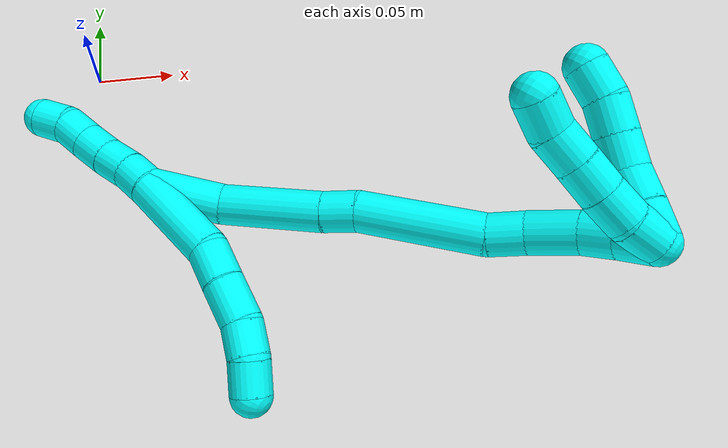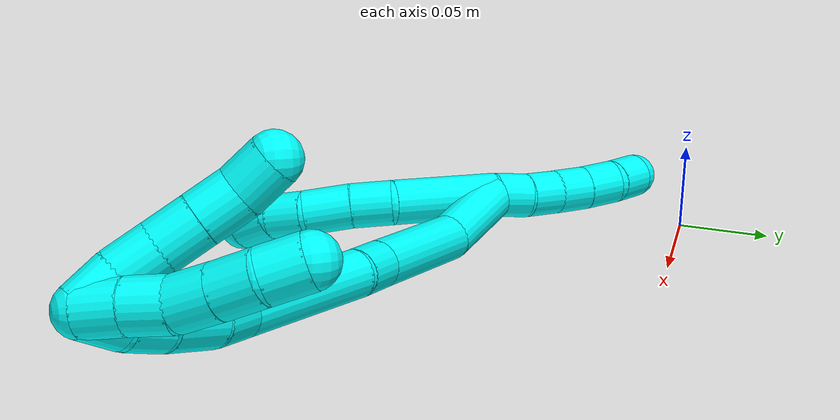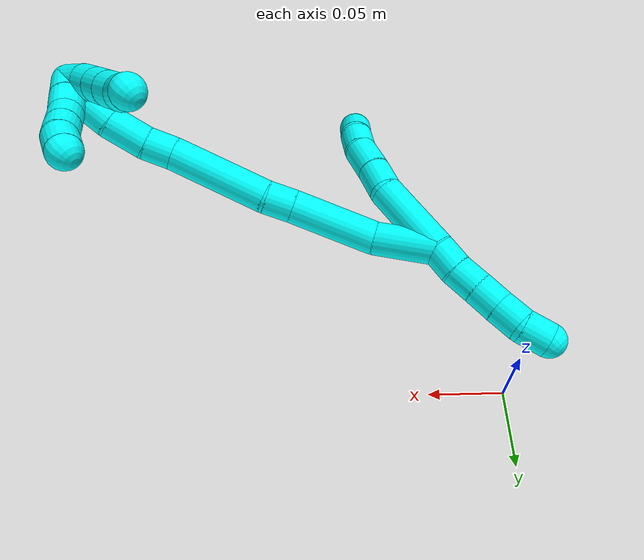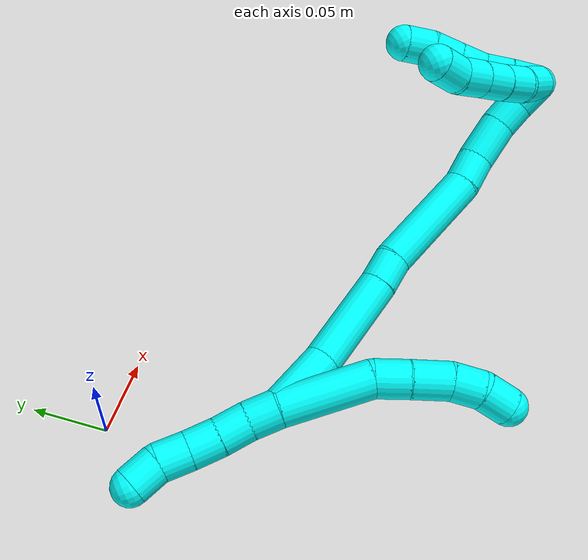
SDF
<sdf version="1.7">
 <world name="default">
  <model name="3">
   <static>0</static>
   <link name="3">
    <collision name="collision-cylinder-e_1_2_8">
     <pose>-0.003443 0.002339 0.029912 -0.078039 -0.114247 0.004465</pose>
     <geometry><cylinder><radius>0.0125</radius><length>0.0604</length></cylinder></geometry>
     <surface>
      <friction><ode><mu>1.16</mu><mu2>1.16</mu2><slip1>0</slip1><slip2>0</slip2></ode></friction>
      <contact><ode><kp>1e+06</kp><kd>1</kd><max_vel>0</max_vel><min_depth>0.001</min_depth></ode></contact>
     </surface>
    </collision>
    <visual name="visual-cylinder-e_1_2_8">
     <pose>-0.003443 0.002339 0.029912 -0.078039 -0.114247 0.004465</pose>
     <geometry><cylinder><radius>0.0125</radius><length>0.0604</length></cylinder></geometry>
     <material><ambient>0.003922 1 0.996078 1</ambient></material>
    </visual>
    <collision name="collision-cylinder-e_2_8_9">
     <pose>-0.011161 0.007368 0.070007 -0.258234 -0.385615 0.050687</pose>
     <geometry><cylinder><radius>0.0125</radius><length>0.022735</length></cylinder></geometry>
     <surface>
      <friction><ode><mu>1.16</mu><mu2>1.16</mu2><slip1>0</slip1><slip2>0</slip2></ode></friction>
      <contact><ode><kp>1e+06</kp><kd>1</kd><max_vel>0</max_vel><min_depth>0.001</min_depth></ode></contact>
     </surface>
    </collision>
    <visual name="visual-cylinder-e_2_8_9">
     <pose>-0.011161 0.007368 0.070007 -0.258234 -0.385615 0.050687</pose>
     <geometry><cylinder><radius>0.0125</radius><length>0.022735</length></cylinder></geometry>
     <material><ambient>0.003922 1 0.996078 1</ambient></material>
    </visual>
    <collision name="collision-cylinder-e_3_9_10">
     <pose>-0.02101 0.012439 0.091811 -0.202158 -0.439237 0.045272</pose>
     <geometry><cylinder><radius>0.0125</radius><length>0.026212</length></cylinder></geometry>
     <surface>
      <friction><ode><mu>1.16</mu><mu2>1.16</mu2><slip1>0</slip1><slip2>0</slip2></ode></friction>
      <contact><ode><kp>1e+06</kp><kd>1</kd><max_vel>0</max_vel><min_depth>0.001</min_depth></ode></contact>
     </surface>
    </collision>
    <visual name="visual-cylinder-e_3_9_10">
     <pose>-0.02101 0.012439 0.091811 -0.202158 -0.439237 0.045272</pose>
     <geometry><cylinder><radius>0.0125</radius><length>0.026212</length></cylinder></geometry>
     <material><ambient>0.003922 1 0.996078 1</ambient></material>
    </visual>
    <collision name="collision-cylinder-e_4_10_11">
     <pose>-0.032347 0.018132 0.111107 -0.407322 -0.603642 0.128419</pose>
     <geometry><cylinder><radius>0.0125</radius><length>0.020307</length></cylinder></geometry>
     <surface>
      <friction><ode><mu>1.16</mu><mu2>1.16</mu2><slip1>0</slip1><slip2>0</slip2></ode></friction>
      <contact><ode><kp>1e+06</kp><kd>1</kd><max_vel>0</max_vel><min_depth>0.001</min_depth></ode></contact>
     </surface>
    </collision>
    <visual name="visual-cylinder-e_4_10_11">
     <pose>-0.032347 0.018132 0.111107 -0.407322 -0.603642 0.128419</pose>
     <geometry><cylinder><radius>0.0125</radius><length>0.020307</length></cylinder></geometry>
     <material><ambient>0.003922 1 0.996078 1</ambient></material>
    </visual>
    <collision name="collision-cylinder-e_5_11_6">
     <pose>-0.046181 0.023942 0.12445 -0.415079 -0.916191 0.206915</pose>
     <geometry><cylinder><radius>0.0125</radius><length>0.020346</length></cylinder></geometry>
     <surface>
      <friction><ode><mu>1.16</mu><mu2>1.16</mu2><slip1>0</slip1><slip2>0</slip2></ode></friction>
      <contact><ode><kp>1e+06</kp><kd>1</kd><max_vel>0</max_vel><min_depth>0.001</min_depth></ode></contact>
     </surface>
    </collision>
    <visual name="visual-cylinder-e_5_11_6">
     <pose>-0.046181 0.023942 0.12445 -0.415079 -0.916191 0.206915</pose>
     <geometry><cylinder><radius>0.0125</radius><length>0.020346</length></cylinder></geometry>
     <material><ambient>0.003922 1 0.996078 1</ambient></material>
    </visual>
    <collision name="collision-cylinder-e_1_2_12">
     <pose>-8e-06 -0.001006 -0.009949 3.04078 -0.00081 -0.016058</pose>
     <geometry><cylinder><radius>0.0125</radius><length>0.02</length></cylinder></geometry>
     <surface>
      <friction><ode><mu>1.16</mu><mu2>1.16</mu2><slip1>0</slip1><slip2>0</slip2></ode></friction>
      <contact><ode><kp>1e+06</kp><kd>1</kd><max_vel>0</max_vel><min_depth>0.001</min_depth></ode></contact>
     </surface>
    </collision>
    <visual name="visual-cylinder-e_1_2_12">
     <pose>-8e-06 -0.001006 -0.009949 3.04078 -0.00081 -0.016058</pose>
     <geometry><cylinder><radius>0.0125</radius><length>0.02</length></cylinder></geometry>
     <material><ambient>0.003922 1 0.996078 1</ambient></material>
    </visual>
    <collision name="collision-cylinder-e_2_12_13">
     <pose>-0.000349 -0.001483 -0.029879 -3.08854 -0.033325 1.12153</pose>
     <geometry><cylinder><radius>0.0125</radius><length>0.02</length></cylinder></geometry>
     <surface>
      <friction><ode><mu>1.16</mu><mu2>1.16</mu2><slip1>0</slip1><slip2>0</slip2></ode></friction>
      <contact><ode><kp>1e+06</kp><kd>1</kd><max_vel>0</max_vel><min_depth>0.001</min_depth></ode></contact>
     </surface>
    </collision>
    <visual name="visual-cylinder-e_2_12_13">
     <pose>-0.000349 -0.001483 -0.029879 -3.08854 -0.033325 1.12153</pose>
     <geometry><cylinder><radius>0.0125</radius><length>0.02</length></cylinder></geometry>
     <material><ambient>0.003922 1 0.996078 1</ambient></material>
    </visual>
    <collision name="collision-cylinder-e_3_13_14">
     <pose>-0.000222 -0.0006 -0.049842 -3.10622 0.046048 -1.83159</pose>
     <geometry><cylinder><radius>0.0125</radius><length>0.02</length></cylinder></geometry>
     <surface>
      <friction><ode><mu>1.16</mu><mu2>1.16</mu2><slip1>0</slip1><slip2>0</slip2></ode></friction>
      <contact><ode><kp>1e+06</kp><kd>1</kd><max_vel>0</max_vel><min_depth>0.001</min_depth></ode></contact>
     </surface>
    </collision>
    <visual name="visual-cylinder-e_3_13_14">
     <pose>-0.000222 -0.0006 -0.049842 -3.10622 0.046048 -1.83159</pose>
     <geometry><cylinder><radius>0.0125</radius><length>0.02</length></cylinder></geometry>
     <material><ambient>0.003922 1 0.996078 1</ambient></material>
    </visual>
    <collision name="collision-cylinder-e_4_14_15">
     <pose>0.001387 0.000412 -0.069737 -3.07527 0.115171 -2.09727</pose>
     <geometry><cylinder><radius>0.0125</radius><length>0.02</length></cylinder></geometry>
     <surface>
      <friction><ode><mu>1.16</mu><mu2>1.16</mu2><slip1>0</slip1><slip2>0</slip2></ode></friction>
      <contact><ode><kp>1e+06</kp><kd>1</kd><max_vel>0</max_vel><min_depth>0.001</min_depth></ode></contact>
     </surface>
    </collision>
    <visual name="visual-cylinder-e_4_14_15">
     <pose>0.001387 0.000412 -0.069737 -3.07527 0.115171 -2.09727</pose>
     <geometry><cylinder><radius>0.0125</radius><length>0.02</length></cylinder></geometry>
     <material><ambient>0.003922 1 0.996078 1</ambient></material>
    </visual>
    <collision name="collision-cylinder-e_5_15_5">
     <pose>0.000921 0.003705 -0.08916 -2.87134 -0.162275 1.07806</pose>
     <geometry><cylinder><radius>0.0125</radius><length>0.02</length></cylinder></geometry>
     <surface>
      <friction><ode><mu>1.16</mu><mu2>1.16</mu2><slip1>0</slip1><slip2>0</slip2></ode></friction>
      <contact><ode><kp>1e+06</kp><kd>1</kd><max_vel>0</max_vel><min_depth>0.001</min_depth></ode></contact>
     </surface>
    </collision>
    <visual name="visual-cylinder-e_5_15_5">
     <pose>0.000921 0.003705 -0.08916 -2.87134 -0.162275 1.07806</pose>
     <geometry><cylinder><radius>0.0125</radius><length>0.02</length></cylinder></geometry>
     <material><ambient>0.003922 1 0.996078 1</ambient></material>
    </visual>
    <collision name="collision-cylinder-e_1_2_16">
     <pose>0.001066 -0.01314 0.019235 0.599307 0.045743 0.014135</pose>
     <geometry><cylinder><radius>0.0125</radius><length>0.046639</length></cylinder></geometry>
     <surface>
      <friction><ode><mu>1.16</mu><mu2>1.16</mu2><slip1>0</slip1><slip2>0</slip2></ode></friction>
      <contact><ode><kp>1e+06</kp><kd>1</kd><max_vel>0</max_vel><min_depth>0.001</min_depth></ode></contact>
     </surface>
    </collision>
    <visual name="visual-cylinder-e_1_2_16">
     <pose>0.001066 -0.01314 0.019235 0.599307 0.045743 0.014135</pose>
     <geometry><cylinder><radius>0.0125</radius><length>0.046639</length></cylinder></geometry>
     <material><ambient>0.003922 1 0.996078 1</ambient></material>
    </visual>
    <collision name="collision-cylinder-e_2_16_17">
     <pose>0.012408 -0.038357 0.066639 0.405033 0.323502 0.066986</pose>
     <geometry><cylinder><radius>0.0125</radius><length>0.064649</length></cylinder></geometry>
     <surface>
      <friction><ode><mu>1.16</mu><mu2>1.16</mu2><slip1>0</slip1><slip2>0</slip2></ode></friction>
      <contact><ode><kp>1e+06</kp><kd>1</kd><max_vel>0</max_vel><min_depth>0.001</min_depth></ode></contact>
     </surface>
    </collision>
    <visual name="visual-cylinder-e_2_16_17">
     <pose>0.012408 -0.038357 0.066639 0.405033 0.323502 0.066986</pose>
     <geometry><cylinder><radius>0.0125</radius><length>0.064649</length></cylinder></geometry>
     <material><ambient>0.003922 1 0.996078 1</ambient></material>
    </visual>
    <collision name="collision-cylinder-e_3_17_18">
     <pose>0.026848 -0.054707 0.103495 0.457126 0.406206 0.095743</pose>
     <geometry><cylinder><radius>0.0125</radius><length>0.021079</length></cylinder></geometry>
     <surface>
      <friction><ode><mu>1.16</mu><mu2>1.16</mu2><slip1>0</slip1><slip2>0</slip2></ode></friction>
      <contact><ode><kp>1e+06</kp><kd>1</kd><max_vel>0</max_vel><min_depth>0.001</min_depth></ode></contact>
     </surface>
    </collision>
    <visual name="visual-cylinder-e_3_17_18">
     <pose>0.026848 -0.054707 0.103495 0.457126 0.406206 0.095743</pose>
     <geometry><cylinder><radius>0.0125</radius><length>0.021079</length></cylinder></geometry>
     <material><ambient>0.003922 1 0.996078 1</ambient></material>
    </visual>
    <collision name="collision-cylinder-e_4_18_19">
     <pose>0.040148 -0.07093 0.146974 0.330856 0.243403 0.040833</pose>
     <geometry><cylinder><radius>0.0125</radius><length>0.075807</length></cylinder></geometry>
     <surface>
      <friction><ode><mu>1.16</mu><mu2>1.16</mu2><slip1>0</slip1><slip2>0</slip2></ode></friction>
      <contact><ode><kp>1e+06</kp><kd>1</kd><max_vel>0</max_vel><min_depth>0.001</min_depth></ode></contact>
     </surface>
    </collision>
    <visual name="visual-cylinder-e_4_18_19">
     <pose>0.040148 -0.07093 0.146974 0.330856 0.243403 0.040833</pose>
     <geometry><cylinder><radius>0.0125</radius><length>0.075807</length></cylinder></geometry>
     <material><ambient>0.003922 1 0.996078 1</ambient></material>
    </visual>
    <collision name="collision-cylinder-e_5_19_20">
     <pose>0.054132 -0.086993 0.190648 0.433563 0.459928 0.103028</pose>
     <geometry><cylinder><radius>0.0125</radius><length>0.021847</length></cylinder></geometry>
     <surface>
      <friction><ode><mu>1.16</mu><mu2>1.16</mu2><slip1>0</slip1><slip2>0</slip2></ode></friction>
      <contact><ode><kp>1e+06</kp><kd>1</kd><max_vel>0</max_vel><min_depth>0.001</min_depth></ode></contact>
     </surface>
    </collision>
    <visual name="visual-cylinder-e_5_19_20">
     <pose>0.054132 -0.086993 0.190648 0.433563 0.459928 0.103028</pose>
     <geometry><cylinder><radius>0.0125</radius><length>0.021847</length></cylinder></geometry>
     <material><ambient>0.003922 1 0.996078 1</ambient></material>
    </visual>
    <collision name="collision-cylinder-e_6_20_21">
     <pose>0.066042 -0.0942 0.2123 0.23778 0.493157 0.060115</pose>
     <geometry><cylinder><radius>0.0125</radius><length>0.029832</length></cylinder></geometry>
     <surface>
      <friction><ode><mu>1.16</mu><mu2>1.16</mu2><slip1>0</slip1><slip2>0</slip2></ode></friction>
      <contact><ode><kp>1e+06</kp><kd>1</kd><max_vel>0</max_vel><min_depth>0.001</min_depth></ode></contact>
     </surface>
    </collision>
    <visual name="visual-cylinder-e_6_20_21">
     <pose>0.066042 -0.0942 0.2123 0.23778 0.493157 0.060115</pose>
     <geometry><cylinder><radius>0.0125</radius><length>0.029832</length></cylinder></geometry>
     <material><ambient>0.003922 1 0.996078 1</ambient></material>
    </visual>
    <collision name="collision-cylinder-e_7_21_22">
     <pose>0.077261 -0.097917 0.234169 0.068338 0.42768 0.014846</pose>
     <geometry><cylinder><radius>0.0125</radius><length>0.020049</length></cylinder></geometry>
     <surface>
      <friction><ode><mu>1.16</mu><mu2>1.16</mu2><slip1>0</slip1><slip2>0</slip2></ode></friction>
      <contact><ode><kp>1e+06</kp><kd>1</kd><max_vel>0</max_vel><min_depth>0.001</min_depth></ode></contact>
     </surface>
    </collision>
    <visual name="visual-cylinder-e_7_21_22">
     <pose>0.077261 -0.097917 0.234169 0.068338 0.42768 0.014846</pose>
     <geometry><cylinder><radius>0.0125</radius><length>0.020049</length></cylinder></geometry>
     <material><ambient>0.003922 1 0.996078 1</ambient></material>
    </visual>
    <collision name="collision-cylinder-e_8_22_1">
     <pose>0.08591 -0.097005 0.252127 -0.171584 0.463278 -0.040566</pose>
     <geometry><cylinder><radius>0.0125</radius><length>0.020097</length></cylinder></geometry>
     <surface>
      <friction><ode><mu>1.16</mu><mu2>1.16</mu2><slip1>0</slip1><slip2>0</slip2></ode></friction>
      <contact><ode><kp>1e+06</kp><kd>1</kd><max_vel>0</max_vel><min_depth>0.001</min_depth></ode></contact>
     </surface>
    </collision>
    <visual name="visual-cylinder-e_8_22_1">
     <pose>0.08591 -0.097005 0.252127 -0.171584 0.463278 -0.040566</pose>
     <geometry><cylinder><radius>0.0125</radius><length>0.020097</length></cylinder></geometry>
     <material><ambient>0.003922 1 0.996078 1</ambient></material>
    </visual>
    <collision name="collision-cylinder-e_1_1_23">
     <pose>0.093951 -0.090409 0.253125 -2.56943 0.363013 -1.11564</pose>
     <geometry><cylinder><radius>0.0125</radius><length>0.02</length></cylinder></geometry>
     <surface>
      <friction><ode><mu>1.16</mu><mu2>1.16</mu2><slip1>0</slip1><slip2>0</slip2></ode></friction>
      <contact><ode><kp>1e+06</kp><kd>1</kd><max_vel>0</max_vel><min_depth>0.001</min_depth></ode></contact>
     </surface>
    </collision>
    <visual name="visual-cylinder-e_1_1_23">
     <pose>0.093951 -0.090409 0.253125 -2.56943 0.363013 -1.11564</pose>
     <geometry><cylinder><radius>0.0125</radius><length>0.02</length></cylinder></geometry>
     <material><ambient>0.003922 1 0.996078 1</ambient></material>
    </visual>
    <collision name="collision-cylinder-e_2_23_24">
     <pose>0.102198 -0.082348 0.236961 -2.79502 0.488867 -1.91773</pose>
     <geometry><cylinder><radius>0.0125</radius><length>0.02</length></cylinder></geometry>
     <surface>
      <friction><ode><mu>1.16</mu><mu2>1.16</mu2><slip1>0</slip1><slip2>0</slip2></ode></friction>
      <contact><ode><kp>1e+06</kp><kd>1</kd><max_vel>0</max_vel><min_depth>0.001</min_depth></ode></contact>
     </surface>
    </collision>
    <visual name="visual-cylinder-e_2_23_24">
     <pose>0.102198 -0.082348 0.236961 -2.79502 0.488867 -1.91773</pose>
     <geometry><cylinder><radius>0.0125</radius><length>0.02</length></cylinder></geometry>
     <material><ambient>0.003922 1 0.996078 1</ambient></material>
    </visual>
    <collision name="collision-cylinder-e_3_24_25">
     <pose>0.112031 -0.076631 0.22052 -2.81917 0.539486 -2.07821</pose>
     <geometry><cylinder><radius>0.0125</radius><length>0.02</length></cylinder></geometry>
     <surface>
      <friction><ode><mu>1.16</mu><mu2>1.16</mu2><slip1>0</slip1><slip2>0</slip2></ode></friction>
      <contact><ode><kp>1e+06</kp><kd>1</kd><max_vel>0</max_vel><min_depth>0.001</min_depth></ode></contact>
     </surface>
    </collision>
    <visual name="visual-cylinder-e_3_24_25">
     <pose>0.112031 -0.076631 0.22052 -2.81917 0.539486 -2.07821</pose>
     <geometry><cylinder><radius>0.0125</radius><length>0.02</length></cylinder></geometry>
     <material><ambient>0.003922 1 0.996078 1</ambient></material>
    </visual>
    <collision name="collision-cylinder-e_4_25_26">
     <pose>0.122176 -0.071099 0.204197 -2.81056 0.524487 -2.02827</pose>
     <geometry><cylinder><radius>0.0125</radius><length>0.02</length></cylinder></geometry>
     <surface>
      <friction><ode><mu>1.16</mu><mu2>1.16</mu2><slip1>0</slip1><slip2>0</slip2></ode></friction>
      <contact><ode><kp>1e+06</kp><kd>1</kd><max_vel>0</max_vel><min_depth>0.001</min_depth></ode></contact>
     </surface>
    </collision>
    <visual name="visual-cylinder-e_4_25_26">
     <pose>0.122176 -0.071099 0.204197 -2.81056 0.524487 -2.02827</pose>
     <geometry><cylinder><radius>0.0125</radius><length>0.02</length></cylinder></geometry>
     <material><ambient>0.003922 1 0.996078 1</ambient></material>
    </visual>
    <collision name="collision-cylinder-e_5_26_4">
     <pose>0.134397 -0.065624 0.189617 -2.74712 0.805714 -2.26466</pose>
     <geometry><cylinder><radius>0.0125</radius><length>0.02</length></cylinder></geometry>
     <surface>
      <friction><ode><mu>1.16</mu><mu2>1.16</mu2><slip1>0</slip1><slip2>0</slip2></ode></friction>
      <contact><ode><kp>1e+06</kp><kd>1</kd><max_vel>0</max_vel><min_depth>0.001</min_depth></ode></contact>
     </surface>
    </collision>
    <visual name="visual-cylinder-e_5_26_4">
     <pose>0.134397 -0.065624 0.189617 -2.74712 0.805714 -2.26466</pose>
     <geometry><cylinder><radius>0.0125</radius><length>0.02</length></cylinder></geometry>
     <material><ambient>0.003922 1 0.996078 1</ambient></material>
    </visual>
    <collision name="collision-cylinder-e_1_1_27">
     <pose>0.095722 -0.098662 0.253142 2.75507 0.561154 1.94847</pose>
     <geometry><cylinder><radius>0.0125</radius><length>0.02</length></cylinder></geometry>
     <surface>
      <friction><ode><mu>1.16</mu><mu2>1.16</mu2><slip1>0</slip1><slip2>0</slip2></ode></friction>
      <contact><ode><kp>1e+06</kp><kd>1</kd><max_vel>0</max_vel><min_depth>0.001</min_depth></ode></contact>
     </surface>
    </collision>
    <visual name="visual-cylinder-e_1_1_27">
     <pose>0.095722 -0.098662 0.253142 2.75507 0.561154 1.94847</pose>
     <geometry><cylinder><radius>0.0125</radius><length>0.02</length></cylinder></geometry>
     <material><ambient>0.003922 1 0.996078 1</ambient></material>
    </visual>
    <collision name="collision-cylinder-e_2_27_28">
     <pose>0.105984 -0.105335 0.237334 2.72957 0.516753 1.80347</pose>
     <geometry><cylinder><radius>0.0125</radius><length>0.02</length></cylinder></geometry>
     <surface>
      <friction><ode><mu>1.16</mu><mu2>1.16</mu2><slip1>0</slip1><slip2>0</slip2></ode></friction>
      <contact><ode><kp>1e+06</kp><kd>1</kd><max_vel>0</max_vel><min_depth>0.001</min_depth></ode></contact>
     </surface>
    </collision>
    <visual name="visual-cylinder-e_2_27_28">
     <pose>0.105984 -0.105335 0.237334 2.72957 0.516753 1.80347</pose>
     <geometry><cylinder><radius>0.0125</radius><length>0.02</length></cylinder></geometry>
     <material><ambient>0.003922 1 0.996078 1</ambient></material>
    </visual>
    <collision name="collision-cylinder-e_3_28_29">
     <pose>0.117706 -0.11067 0.222255 2.88667 0.74525 2.50795</pose>
     <geometry><cylinder><radius>0.0125</radius><length>0.02</length></cylinder></geometry>
     <surface>
      <friction><ode><mu>1.16</mu><mu2>1.16</mu2><slip1>0</slip1><slip2>0</slip2></ode></friction>
      <contact><ode><kp>1e+06</kp><kd>1</kd><max_vel>0</max_vel><min_depth>0.001</min_depth></ode></contact>
     </surface>
    </collision>
    <visual name="visual-cylinder-e_3_28_29">
     <pose>0.117706 -0.11067 0.222255 2.88667 0.74525 2.50795</pose>
     <geometry><cylinder><radius>0.0125</radius><length>0.02</length></cylinder></geometry>
     <material><ambient>0.003922 1 0.996078 1</ambient></material>
    </visual>
    <collision name="collision-cylinder-e_4_29_30">
     <pose>0.131371 -0.114103 0.208064 2.92205 0.759213 2.60252</pose>
     <geometry><cylinder><radius>0.0125</radius><length>0.02</length></cylinder></geometry>
     <surface>
      <friction><ode><mu>1.16</mu><mu2>1.16</mu2><slip1>0</slip1><slip2>0</slip2></ode></friction>
      <contact><ode><kp>1e+06</kp><kd>1</kd><max_vel>0</max_vel><min_depth>0.001</min_depth></ode></contact>
     </surface>
    </collision>
    <visual name="visual-cylinder-e_4_29_30">
     <pose>0.131371 -0.114103 0.208064 2.92205 0.759213 2.60252</pose>
     <geometry><cylinder><radius>0.0125</radius><length>0.02</length></cylinder></geometry>
     <material><ambient>0.003922 1 0.996078 1</ambient></material>
    </visual>
    <collision name="collision-cylinder-e_5_30_3">
     <pose>0.143586 -0.116285 0.192545 3.07041 0.562269 2.89623</pose>
     <geometry><cylinder><radius>0.0125</radius><length>0.02</length></cylinder></geometry>
     <surface>
      <friction><ode><mu>1.16</mu><mu2>1.16</mu2><slip1>0</slip1><slip2>0</slip2></ode></friction>
      <contact><ode><kp>1e+06</kp><kd>1</kd><max_vel>0</max_vel><min_depth>0.001</min_depth></ode></contact>
     </surface>
    </collision>
    <visual name="visual-cylinder-e_5_30_3">
     <pose>0.143586 -0.116285 0.192545 3.07041 0.562269 2.89623</pose>
     <geometry><cylinder><radius>0.0125</radius><length>0.02</length></cylinder></geometry>
     <material><ambient>0.003922 1 0.996078 1</ambient></material>
    </visual>
    <collision name="collision-sphere-3">
     <pose>0.148917 -0.116887 0.184106 0 -0 0</pose>
     <geometry><sphere><radius>0.0125</radius></sphere></geometry>
     <surface>
      <friction><ode><mu>1.16</mu><mu2>1.16</mu2><slip1>0</slip1><slip2>0</slip2></ode></friction>
      <contact><ode><kp>1e+06</kp><kd>1</kd><max_vel>0</max_vel><min_depth>0.001</min_depth></ode></contact>
     </surface>
    </collision>
    <visual name="visual-sphere-3">
     <pose>0.148917 -0.116887 0.184106 0 -0 0</pose>
     <geometry><sphere><radius>0.0125</radius></sphere></geometry>
     <material><ambient>0.003922 1 0.996078 1</ambient></material>
    </visual>
    <collision name="collision-sphere-30">
     <pose>0.138255 -0.115683 0.200984 0 -0 0</pose>
     <geometry><sphere><radius>0.0125</radius></sphere></geometry>
     <surface>
      <friction><ode><mu>1.16</mu><mu2>1.16</mu2><slip1>0</slip1><slip2>0</slip2></ode></friction>
      <contact><ode><kp>1e+06</kp><kd>1</kd><max_vel>0</max_vel><min_depth>0.001</min_depth></ode></contact>
     </surface>
    </collision>
    <visual name="visual-sphere-30">
     <pose>0.138255 -0.115683 0.200984 0 -0 0</pose>
     <geometry><sphere><radius>0.0125</radius></sphere></geometry>
     <material><ambient>0.003922 1 0.996078 1</ambient></material>
    </visual>
    <collision name="collision-sphere-29">
     <pose>0.124488 -0.112524 0.215144 0 -0 0</pose>
     <geometry><sphere><radius>0.0125</radius></sphere></geometry>
     <surface>
      <friction><ode><mu>1.16</mu><mu2>1.16</mu2><slip1>0</slip1><slip2>0</slip2></ode></friction>
      <contact><ode><kp>1e+06</kp><kd>1</kd><max_vel>0</max_vel><min_depth>0.001</min_depth></ode></contact>
     </surface>
    </collision>
    <visual name="visual-sphere-29">
     <pose>0.124488 -0.112524 0.215144 0 -0 0</pose>
     <geometry><sphere><radius>0.0125</radius></sphere></geometry>
     <material><ambient>0.003922 1 0.996078 1</ambient></material>
    </visual>
    <collision name="collision-sphere-28">
     <pose>0.110925 -0.108817 0.229367 0 -0 0</pose>
     <geometry><sphere><radius>0.0125</radius></sphere></geometry>
     <surface>
      <friction><ode><mu>1.16</mu><mu2>1.16</mu2><slip1>0</slip1><slip2>0</slip2></ode></friction>
      <contact><ode><kp>1e+06</kp><kd>1</kd><max_vel>0</max_vel><min_depth>0.001</min_depth></ode></contact>
     </surface>
    </collision>
    <visual name="visual-sphere-28">
     <pose>0.110925 -0.108817 0.229367 0 -0 0</pose>
     <geometry><sphere><radius>0.0125</radius></sphere></geometry>
     <material><ambient>0.003922 1 0.996078 1</ambient></material>
    </visual>
    <collision name="collision-sphere-27">
     <pose>0.101043 -0.101854 0.2453 0 -0 0</pose>
     <geometry><sphere><radius>0.0125</radius></sphere></geometry>
     <surface>
      <friction><ode><mu>1.16</mu><mu2>1.16</mu2><slip1>0</slip1><slip2>0</slip2></ode></friction>
      <contact><ode><kp>1e+06</kp><kd>1</kd><max_vel>0</max_vel><min_depth>0.001</min_depth></ode></contact>
     </surface>
    </collision>
    <visual name="visual-sphere-27">
     <pose>0.101043 -0.101854 0.2453 0 -0 0</pose>
     <geometry><sphere><radius>0.0125</radius></sphere></geometry>
     <material><ambient>0.003922 1 0.996078 1</ambient></material>
    </visual>
    <collision name="collision-sphere-4">
     <pose>0.14161 -0.062962 0.183223 0 -0 0</pose>
     <geometry><sphere><radius>0.0125</radius></sphere></geometry>
     <surface>
      <friction><ode><mu>1.16</mu><mu2>1.16</mu2><slip1>0</slip1><slip2>0</slip2></ode></friction>
      <contact><ode><kp>1e+06</kp><kd>1</kd><max_vel>0</max_vel><min_depth>0.001</min_depth></ode></contact>
     </surface>
    </collision>
    <visual name="visual-sphere-4">
     <pose>0.14161 -0.062962 0.183223 0 -0 0</pose>
     <geometry><sphere><radius>0.0125</radius></sphere></geometry>
     <material><ambient>0.003922 1 0.996078 1</ambient></material>
    </visual>
    <collision name="collision-sphere-26">
     <pose>0.127184 -0.068286 0.196011 0 -0 0</pose>
     <geometry><sphere><radius>0.0125</radius></sphere></geometry>
     <surface>
      <friction><ode><mu>1.16</mu><mu2>1.16</mu2><slip1>0</slip1><slip2>0</slip2></ode></friction>
      <contact><ode><kp>1e+06</kp><kd>1</kd><max_vel>0</max_vel><min_depth>0.001</min_depth></ode></contact>
     </surface>
    </collision>
    <visual name="visual-sphere-26">
     <pose>0.127184 -0.068286 0.196011 0 -0 0</pose>
     <geometry><sphere><radius>0.0125</radius></sphere></geometry>
     <material><ambient>0.003922 1 0.996078 1</ambient></material>
    </visual>
    <collision name="collision-sphere-25">
     <pose>0.117168 -0.073912 0.212383 0 -0 0</pose>
     <geometry><sphere><radius>0.0125</radius></sphere></geometry>
     <surface>
      <friction><ode><mu>1.16</mu><mu2>1.16</mu2><slip1>0</slip1><slip2>0</slip2></ode></friction>
      <contact><ode><kp>1e+06</kp><kd>1</kd><max_vel>0</max_vel><min_depth>0.001</min_depth></ode></contact>
     </surface>
    </collision>
    <visual name="visual-sphere-25">
     <pose>0.117168 -0.073912 0.212383 0 -0 0</pose>
     <geometry><sphere><radius>0.0125</radius></sphere></geometry>
     <material><ambient>0.003922 1 0.996078 1</ambient></material>
    </visual>
    <collision name="collision-sphere-24">
     <pose>0.106894 -0.079349 0.228658 0 -0 0</pose>
     <geometry><sphere><radius>0.0125</radius></sphere></geometry>
     <surface>
      <friction><ode><mu>1.16</mu><mu2>1.16</mu2><slip1>0</slip1><slip2>0</slip2></ode></friction>
      <contact><ode><kp>1e+06</kp><kd>1</kd><max_vel>0</max_vel><min_depth>0.001</min_depth></ode></contact>
     </surface>
    </collision>
    <visual name="visual-sphere-24">
     <pose>0.106894 -0.079349 0.228658 0 -0 0</pose>
     <geometry><sphere><radius>0.0125</radius></sphere></geometry>
     <material><ambient>0.003922 1 0.996078 1</ambient></material>
    </visual>
    <collision name="collision-sphere-23">
     <pose>0.097502 -0.085347 0.245265 0 -0 0</pose>
     <geometry><sphere><radius>0.0125</radius></sphere></geometry>
     <surface>
      <friction><ode><mu>1.16</mu><mu2>1.16</mu2><slip1>0</slip1><slip2>0</slip2></ode></friction>
      <contact><ode><kp>1e+06</kp><kd>1</kd><max_vel>0</max_vel><min_depth>0.001</min_depth></ode></contact>
     </surface>
    </collision>
    <visual name="visual-sphere-23">
     <pose>0.097502 -0.085347 0.245265 0 -0 0</pose>
     <geometry><sphere><radius>0.0125</radius></sphere></geometry>
     <material><ambient>0.003922 1 0.996078 1</ambient></material>
    </visual>
    <collision name="collision-sphere-1">
     <pose>0.0904 -0.09547 0.260984 0 -0 0</pose>
     <geometry><sphere><radius>0.0125</radius></sphere></geometry>
     <surface>
      <friction><ode><mu>1.16</mu><mu2>1.16</mu2><slip1>0</slip1><slip2>0</slip2></ode></friction>
      <contact><ode><kp>1e+06</kp><kd>1</kd><max_vel>0</max_vel><min_depth>0.001</min_depth></ode></contact>
     </surface>
    </collision>
    <visual name="visual-sphere-1">
     <pose>0.0904 -0.09547 0.260984 0 -0 0</pose>
     <geometry><sphere><radius>0.0125</radius></sphere></geometry>
     <material><ambient>0.003922 1 0.996078 1</ambient></material>
    </visual>
    <collision name="collision-sphere-22">
     <pose>0.081419 -0.09854 0.243269 0 -0 0</pose>
     <geometry><sphere><radius>0.0125</radius></sphere></geometry>
     <surface>
      <friction><ode><mu>1.16</mu><mu2>1.16</mu2><slip1>0</slip1><slip2>0</slip2></ode></friction>
      <contact><ode><kp>1e+06</kp><kd>1</kd><max_vel>0</max_vel><min_depth>0.001</min_depth></ode></contact>
     </surface>
    </collision>
    <visual name="visual-sphere-22">
     <pose>0.081419 -0.09854 0.243269 0 -0 0</pose>
     <geometry><sphere><radius>0.0125</radius></sphere></geometry>
     <material><ambient>0.003922 1 0.996078 1</ambient></material>
    </visual>
    <collision name="collision-sphere-21">
     <pose>0.073104 -0.097295 0.225069 0 -0 0</pose>
     <geometry><sphere><radius>0.0125</radius></sphere></geometry>
     <surface>
      <friction><ode><mu>1.16</mu><mu2>1.16</mu2><slip1>0</slip1><slip2>0</slip2></ode></friction>
      <contact><ode><kp>1e+06</kp><kd>1</kd><max_vel>0</max_vel><min_depth>0.001</min_depth></ode></contact>
     </surface>
    </collision>
    <visual name="visual-sphere-21">
     <pose>0.073104 -0.097295 0.225069 0 -0 0</pose>
     <geometry><sphere><radius>0.0125</radius></sphere></geometry>
     <material><ambient>0.003922 1 0.996078 1</ambient></material>
    </visual>
    <collision name="collision-sphere-6">
     <pose>-0.054251 0.026439 0.130117 0 -0 0</pose>
     <geometry><sphere><radius>0.0125</radius></sphere></geometry>
     <surface>
      <friction><ode><mu>1.16</mu><mu2>1.16</mu2><slip1>0</slip1><slip2>0</slip2></ode></friction>
      <contact><ode><kp>1e+06</kp><kd>1</kd><max_vel>0</max_vel><min_depth>0.001</min_depth></ode></contact>
     </surface>
    </collision>
    <visual name="visual-sphere-6">
     <pose>-0.054251 0.026439 0.130117 0 -0 0</pose>
     <geometry><sphere><radius>0.0125</radius></sphere></geometry>
     <material><ambient>0.003922 1 0.996078 1</ambient></material>
    </visual>
    <collision name="collision-sphere-11">
     <pose>-0.038111 0.021444 0.118782 0 -0 0</pose>
     <geometry><sphere><radius>0.0125</radius></sphere></geometry>
     <surface>
      <friction><ode><mu>1.16</mu><mu2>1.16</mu2><slip1>0</slip1><slip2>0</slip2></ode></friction>
      <contact><ode><kp>1e+06</kp><kd>1</kd><max_vel>0</max_vel><min_depth>0.001</min_depth></ode></contact>
     </surface>
    </collision>
    <visual name="visual-sphere-11">
     <pose>-0.038111 0.021444 0.118782 0 -0 0</pose>
     <geometry><sphere><radius>0.0125</radius></sphere></geometry>
     <material><ambient>0.003922 1 0.996078 1</ambient></material>
    </visual>
    <collision name="collision-sphere-10">
     <pose>-0.026583 0.014821 0.103431 0 -0 0</pose>
     <geometry><sphere><radius>0.0125</radius></sphere></geometry>
     <surface>
      <friction><ode><mu>1.16</mu><mu2>1.16</mu2><slip1>0</slip1><slip2>0</slip2></ode></friction>
      <contact><ode><kp>1e+06</kp><kd>1</kd><max_vel>0</max_vel><min_depth>0.001</min_depth></ode></contact>
     </surface>
    </collision>
    <visual name="visual-sphere-10">
     <pose>-0.026583 0.014821 0.103431 0 -0 0</pose>
     <geometry><sphere><radius>0.0125</radius></sphere></geometry>
     <material><ambient>0.003922 1 0.996078 1</ambient></material>
    </visual>
    <collision name="collision-sphere-9">
     <pose>-0.015437 0.010058 0.08019 0 -0 0</pose>
     <geometry><sphere><radius>0.0125</radius></sphere></geometry>
     <surface>
      <friction><ode><mu>1.16</mu><mu2>1.16</mu2><slip1>0</slip1><slip2>0</slip2></ode></friction>
      <contact><ode><kp>1e+06</kp><kd>1</kd><max_vel>0</max_vel><min_depth>0.001</min_depth></ode></contact>
     </surface>
    </collision>
    <visual name="visual-sphere-9">
     <pose>-0.015437 0.010058 0.08019 0 -0 0</pose>
     <geometry><sphere><radius>0.0125</radius></sphere></geometry>
     <material><ambient>0.003922 1 0.996078 1</ambient></material>
    </visual>
    <collision name="collision-sphere-2">
     <geometry><sphere><radius>0.0125</radius></sphere></geometry>
     <surface>
      <friction><ode><mu>1.16</mu><mu2>1.16</mu2><slip1>0</slip1><slip2>0</slip2></ode></friction>
      <contact><ode><kp>1e+06</kp><kd>1</kd><max_vel>0</max_vel><min_depth>0.001</min_depth></ode></contact>
     </surface>
    </collision>
    <visual name="visual-sphere-2">
     <geometry><sphere><radius>0.0125</radius></sphere></geometry>
     <material><ambient>0.003922 1 0.996078 1</ambient></material>
    </visual>
    <collision name="collision-sphere-19">
     <pose>0.049283 -0.08288 0.181765 0 -0 0</pose>
     <geometry><sphere><radius>0.0125</radius></sphere></geometry>
     <surface>
      <friction><ode><mu>1.16</mu><mu2>1.16</mu2><slip1>0</slip1><slip2>0</slip2></ode></friction>
      <contact><ode><kp>1e+06</kp><kd>1</kd><max_vel>0</max_vel><min_depth>0.001</min_depth></ode></contact>
     </surface>
    </collision>
    <visual name="visual-sphere-19">
     <pose>0.049283 -0.08288 0.181765 0 -0 0</pose>
     <geometry><sphere><radius>0.0125</radius></sphere></geometry>
     <material><ambient>0.003922 1 0.996078 1</ambient></material>
    </visual>
    <collision name="collision-sphere-8">
     <pose>-0.006886 0.004678 0.059824 0 -0 0</pose>
     <geometry><sphere><radius>0.0125</radius></sphere></geometry>
     <surface>
      <friction><ode><mu>1.16</mu><mu2>1.16</mu2><slip1>0</slip1><slip2>0</slip2></ode></friction>
      <contact><ode><kp>1e+06</kp><kd>1</kd><max_vel>0</max_vel><min_depth>0.001</min_depth></ode></contact>
     </surface>
    </collision>
    <visual name="visual-sphere-8">
     <pose>-0.006886 0.004678 0.059824 0 -0 0</pose>
     <geometry><sphere><radius>0.0125</radius></sphere></geometry>
     <material><ambient>0.003922 1 0.996078 1</ambient></material>
    </visual>
    <collision name="collision-sphere-12">
     <pose>-1.6e-05 -0.002013 -0.019898 0 -0 0</pose>
     <geometry><sphere><radius>0.0125</radius></sphere></geometry>
     <surface>
      <friction><ode><mu>1.16</mu><mu2>1.16</mu2><slip1>0</slip1><slip2>0</slip2></ode></friction>
      <contact><ode><kp>1e+06</kp><kd>1</kd><max_vel>0</max_vel><min_depth>0.001</min_depth></ode></contact>
     </surface>
    </collision>
    <visual name="visual-sphere-12">
     <pose>-1.6e-05 -0.002013 -0.019898 0 -0 0</pose>
     <geometry><sphere><radius>0.0125</radius></sphere></geometry>
     <material><ambient>0.003922 1 0.996078 1</ambient></material>
    </visual>
    <collision name="collision-sphere-13">
     <pose>-0.000683 -0.000953 -0.039859 0 -0 0</pose>
     <geometry><sphere><radius>0.0125</radius></sphere></geometry>
     <surface>
      <friction><ode><mu>1.16</mu><mu2>1.16</mu2><slip1>0</slip1><slip2>0</slip2></ode></friction>
      <contact><ode><kp>1e+06</kp><kd>1</kd><max_vel>0</max_vel><min_depth>0.001</min_depth></ode></contact>
     </surface>
    </collision>
    <visual name="visual-sphere-13">
     <pose>-0.000683 -0.000953 -0.039859 0 -0 0</pose>
     <geometry><sphere><radius>0.0125</radius></sphere></geometry>
     <material><ambient>0.003922 1 0.996078 1</ambient></material>
    </visual>
    <collision name="collision-sphere-14">
     <pose>0.000238 -0.000246 -0.059826 0 -0 0</pose>
     <geometry><sphere><radius>0.0125</radius></sphere></geometry>
     <surface>
      <friction><ode><mu>1.16</mu><mu2>1.16</mu2><slip1>0</slip1><slip2>0</slip2></ode></friction>
      <contact><ode><kp>1e+06</kp><kd>1</kd><max_vel>0</max_vel><min_depth>0.001</min_depth></ode></contact>
     </surface>
    </collision>
    <visual name="visual-sphere-14">
     <pose>0.000238 -0.000246 -0.059826 0 -0 0</pose>
     <geometry><sphere><radius>0.0125</radius></sphere></geometry>
     <material><ambient>0.003922 1 0.996078 1</ambient></material>
    </visual>
    <collision name="collision-sphere-15">
     <pose>0.002536 0.00107 -0.079649 0 -0 0</pose>
     <geometry><sphere><radius>0.0125</radius></sphere></geometry>
     <surface>
      <friction><ode><mu>1.16</mu><mu2>1.16</mu2><slip1>0</slip1><slip2>0</slip2></ode></friction>
      <contact><ode><kp>1e+06</kp><kd>1</kd><max_vel>0</max_vel><min_depth>0.001</min_depth></ode></contact>
     </surface>
    </collision>
    <visual name="visual-sphere-15">
     <pose>0.002536 0.00107 -0.079649 0 -0 0</pose>
     <geometry><sphere><radius>0.0125</radius></sphere></geometry>
     <material><ambient>0.003922 1 0.996078 1</ambient></material>
    </visual>
    <collision name="collision-sphere-5">
     <pose>-0.000695 0.00634 -0.09867 0 -0 0</pose>
     <geometry><sphere><radius>0.0125</radius></sphere></geometry>
     <surface>
      <friction><ode><mu>1.16</mu><mu2>1.16</mu2><slip1>0</slip1><slip2>0</slip2></ode></friction>
      <contact><ode><kp>1e+06</kp><kd>1</kd><max_vel>0</max_vel><min_depth>0.001</min_depth></ode></contact>
     </surface>
    </collision>
    <visual name="visual-sphere-5">
     <pose>-0.000695 0.00634 -0.09867 0 -0 0</pose>
     <geometry><sphere><radius>0.0125</radius></sphere></geometry>
     <material><ambient>0.003922 1 0.996078 1</ambient></material>
    </visual>
    <collision name="collision-sphere-16">
     <pose>0.002133 -0.02628 0.03847 0 -0 0</pose>
     <geometry><sphere><radius>0.0125</radius></sphere></geometry>
     <surface>
      <friction><ode><mu>1.16</mu><mu2>1.16</mu2><slip1>0</slip1><slip2>0</slip2></ode></friction>
      <contact><ode><kp>1e+06</kp><kd>1</kd><max_vel>0</max_vel><min_depth>0.001</min_depth></ode></contact>
     </surface>
    </collision>
    <visual name="visual-sphere-16">
     <pose>0.002133 -0.02628 0.03847 0 -0 0</pose>
     <geometry><sphere><radius>0.0125</radius></sphere></geometry>
     <material><ambient>0.003922 1 0.996078 1</ambient></material>
    </visual>
    <collision name="collision-sphere-17">
     <pose>0.022684 -0.050434 0.094807 0 -0 0</pose>
     <geometry><sphere><radius>0.0125</radius></sphere></geometry>
     <surface>
      <friction><ode><mu>1.16</mu><mu2>1.16</mu2><slip1>0</slip1><slip2>0</slip2></ode></friction>
      <contact><ode><kp>1e+06</kp><kd>1</kd><max_vel>0</max_vel><min_depth>0.001</min_depth></ode></contact>
     </surface>
    </collision>
    <visual name="visual-sphere-17">
     <pose>0.022684 -0.050434 0.094807 0 -0 0</pose>
     <geometry><sphere><radius>0.0125</radius></sphere></geometry>
     <material><ambient>0.003922 1 0.996078 1</ambient></material>
    </visual>
    <collision name="collision-sphere-18">
     <pose>0.031013 -0.05898 0.112183 0 -0 0</pose>
     <geometry><sphere><radius>0.0125</radius></sphere></geometry>
     <surface>
      <friction><ode><mu>1.16</mu><mu2>1.16</mu2><slip1>0</slip1><slip2>0</slip2></ode></friction>
      <contact><ode><kp>1e+06</kp><kd>1</kd><max_vel>0</max_vel><min_depth>0.001</min_depth></ode></contact>
     </surface>
    </collision>
    <visual name="visual-sphere-18">
     <pose>0.031013 -0.05898 0.112183 0 -0 0</pose>
     <geometry><sphere><radius>0.0125</radius></sphere></geometry>
     <material><ambient>0.003922 1 0.996078 1</ambient></material>
    </visual>
    <collision name="collision-sphere-20">
     <pose>0.058981 -0.091105 0.199531 0 -0 0</pose>
     <geometry><sphere><radius>0.0125</radius></sphere></geometry>
     <surface>
      <friction><ode><mu>1.16</mu><mu2>1.16</mu2><slip1>0</slip1><slip2>0</slip2></ode></friction>
      <contact><ode><kp>1e+06</kp><kd>1</kd><max_vel>0</max_vel><min_depth>0.001</min_depth></ode></contact>
     </surface>
    </collision>
    <visual name="visual-sphere-20">
     <pose>0.058981 -0.091105 0.199531 0 -0 0</pose>
     <geometry><sphere><radius>0.0125</radius></sphere></geometry>
     <material><ambient>0.003922 1 0.996078 1</ambient></material>
    </visual>
    <inertial>
     <pose>0.041997 -0.047145 0.118354 0 -0 0</pose>
     <mass>0.75</mass>
     <inertia>
      <ixx>0.000118</ixx>
      <ixy>0</ixy>
      <ixz>0</ixz>
      <iyy>0.000112</iyy>
      <iyz>0</iyz>
      <izz>1.2e-05</izz>
     </inertia>
    </inertial>
   </link>
   <pose>0.034086 -0.103095 0.023528 1.27671 -1.01185 0.975231</pose>
  </model>
 </world>
</sdf>
